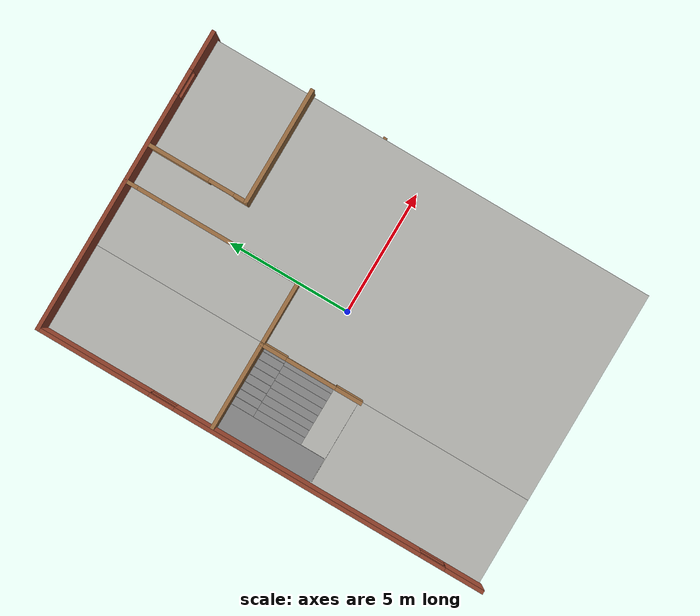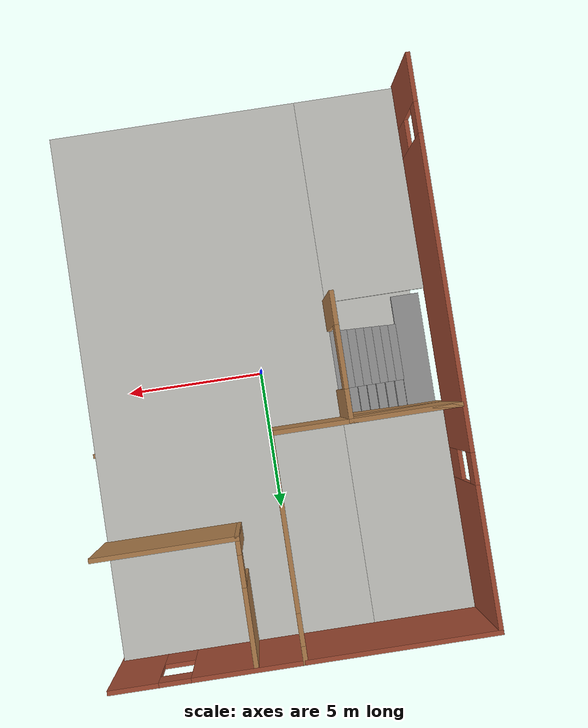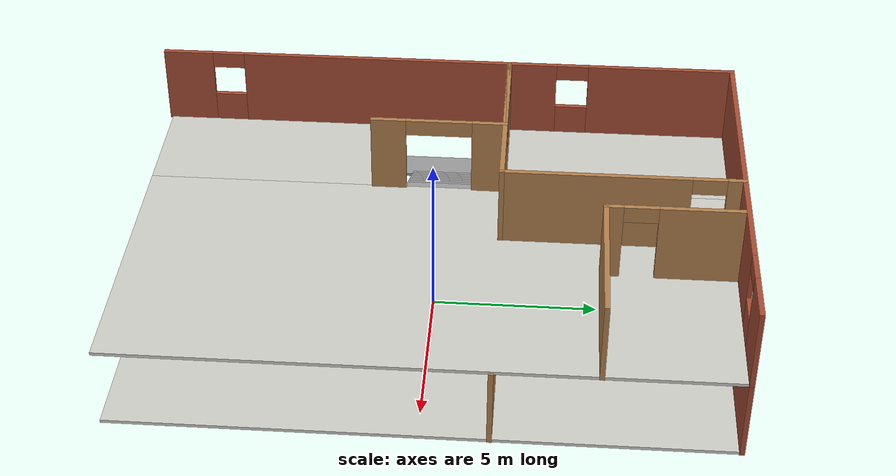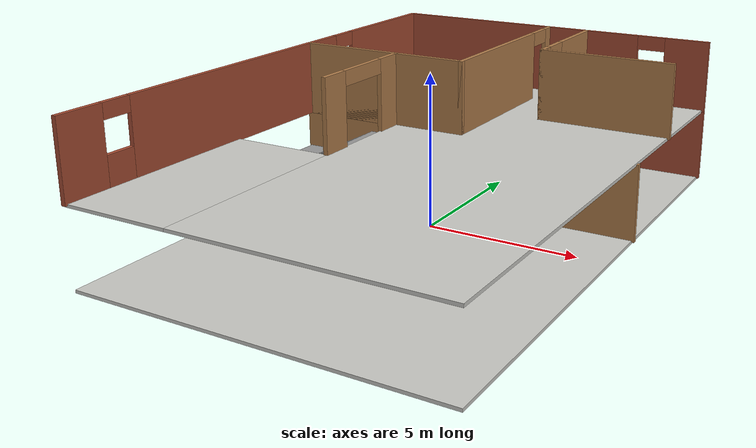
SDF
<sdf version="1.6">
 <model name="demo_model">
  <static>1</static>
  <link name="demo_wall_1_3">
   <pose>0 9.0 0         0 0 0</pose>
   <visual name="demo_wall_1_3_0_left_visual">
    <pose>-5.2875 0 1.25 -0 0 0</pose>
    <geometry><box><size>1.575 0.15 2.5</size></box></geometry>
    <material>
     <script><uri>file://media/materials/scripts/gazebo.material</uri><name>Gazebo/Bricks</name></script>
    </material>
    <meta><layer>0</layer></meta>
   </visual>
   <collision name="demo_wall_1_3_0_left_collision">
    <pose>-5.2875 0 1.25 -0 0 0</pose>
    <geometry><box><size>1.575 0.15 2.5</size></box></geometry>
    <surface>
     <bounce><threshold>1e+06</threshold></bounce>
     <contact><ode><kp>1e+13</kp></ode><bullet><kp>1e+13</kp></bullet></contact>
    </surface>
   </collision>
   <visual name="demo_wall_1_3_0_up_visual">
    <pose>-4.0 0 2.25 -0 0 0</pose>
    <geometry><box><size>1.0 0.15 0.5</size></box></geometry>
    <material>
     <script><uri>file://media/materials/scripts/gazebo.material</uri><name>Gazebo/Bricks</name></script>
    </material>
    <meta><layer>0</layer></meta>
   </visual>
   <collision name="demo_wall_1_3_0_up_collision">
    <pose>-4.0 0 2.25 -0 0 0</pose>
    <geometry><box><size>1.0 0.15 0.5</size></box></geometry>
    <surface>
     <bounce><threshold>1e+06</threshold></bounce>
     <contact><ode><kp>1e+13</kp></ode><bullet><kp>1e+13</kp></bullet></contact>
    </surface>
   </collision>
   <visual name="demo_wall_1_3_0_down_visual">
    <pose>-4.0 0 0.5 -0 0 0</pose>
    <geometry><box><size>1.0 0.15 1</size></box></geometry>
    <material>
     <script><uri>file://media/materials/scripts/gazebo.material</uri><name>Gazebo/Bricks</name></script>
    </material>
    <meta><layer>0</layer></meta>
   </visual>
   <collision name="demo_wall_1_3_0_down_collision">
    <pose>-4.0 0 0.5 -0 0 0</pose>
    <geometry><box><size>1.0 0.15 1</size></box></geometry>
    <surface>
     <bounce><threshold>1e+06</threshold></bounce>
     <contact><ode><kp>1e+13</kp></ode><bullet><kp>1e+13</kp></bullet></contact>
    </surface>
   </collision>
   <visual name="demo_wall_1_3_0_right_visual">
    <pose>1.2874999999999996 0 1.25 -0 0 0</pose>
    <geometry><box><size>9.575 0.15 2.5</size></box></geometry>
    <material>
     <script><uri>file://media/materials/scripts/gazebo.material</uri><name>Gazebo/Bricks</name></script>
    </material>
    <meta><layer>0</layer></meta>
   </visual>
   <collision name="demo_wall_1_3_0_right_collision">
    <pose>1.2874999999999996 0 1.25 -0 0 0</pose>
    <geometry><box><size>9.575 0.15 2.5</size></box></geometry>
    <surface>
     <bounce><threshold>1e+06</threshold></bounce>
     <contact><ode><kp>1e+13</kp></ode><bullet><kp>1e+13</kp></bullet></contact>
    </surface>
   </collision>
  </link>
  <link name="demo_wall_2_3">
   <pose>0 9.0 2.5         0 0 0</pose>
   <visual name="demo_wall_2_3_0_left_visual">
    <pose>-1.2874999999999996 0 1.25 -0 0 0</pose>
    <geometry><box><size>9.575 0.15 2.5</size></box></geometry>
    <material>
     <script><uri>file://media/materials/scripts/gazebo.material</uri><name>Gazebo/Bricks</name></script>
    </material>
    <meta><layer>1</layer></meta>
   </visual>
   <collision name="demo_wall_2_3_0_left_collision">
    <pose>-1.2874999999999996 0 1.25 -0 0 0</pose>
    <geometry><box><size>9.575 0.15 2.5</size></box></geometry>
    <surface>
     <bounce><threshold>1e+06</threshold></bounce>
     <contact><ode><kp>1e+13</kp></ode><bullet><kp>1e+13</kp></bullet></contact>
    </surface>
   </collision>
   <visual name="demo_wall_2_3_0_up_visual">
    <pose>4.0 0 2.25 -0 0 0</pose>
    <geometry><box><size>1.0 0.15 0.5</size></box></geometry>
    <material>
     <script><uri>file://media/materials/scripts/gazebo.material</uri><name>Gazebo/Bricks</name></script>
    </material>
    <meta><layer>1</layer></meta>
   </visual>
   <collision name="demo_wall_2_3_0_up_collision">
    <pose>4.0 0 2.25 -0 0 0</pose>
    <geometry><box><size>1.0 0.15 0.5</size></box></geometry>
    <surface>
     <bounce><threshold>1e+06</threshold></bounce>
     <contact><ode><kp>1e+13</kp></ode><bullet><kp>1e+13</kp></bullet></contact>
    </surface>
   </collision>
   <visual name="demo_wall_2_3_0_down_visual">
    <pose>4.0 0 0.5 -0 0 0</pose>
    <geometry><box><size>1.0 0.15 1</size></box></geometry>
    <material>
     <script><uri>file://media/materials/scripts/gazebo.material</uri><name>Gazebo/Bricks</name></script>
    </material>
    <meta><layer>1</layer></meta>
   </visual>
   <collision name="demo_wall_2_3_0_down_collision">
    <pose>4.0 0 0.5 -0 0 0</pose>
    <geometry><box><size>1.0 0.15 1</size></box></geometry>
    <surface>
     <bounce><threshold>1e+06</threshold></bounce>
     <contact><ode><kp>1e+13</kp></ode><bullet><kp>1e+13</kp></bullet></contact>
    </surface>
   </collision>
   <visual name="demo_wall_2_3_0_right_visual">
    <pose>5.2875 0 1.25 -0 0 0</pose>
    <geometry><box><size>1.575 0.15 2.5</size></box></geometry>
    <material>
     <script><uri>file://media/materials/scripts/gazebo.material</uri><name>Gazebo/Bricks</name></script>
    </material>
    <meta><layer>1</layer></meta>
   </visual>
   <collision name="demo_wall_2_3_0_right_collision">
    <pose>5.2875 0 1.25 -0 0 0</pose>
    <geometry><box><size>1.575 0.15 2.5</size></box></geometry>
    <surface>
     <bounce><threshold>1e+06</threshold></bounce>
     <contact><ode><kp>1e+13</kp></ode><bullet><kp>1e+13</kp></bullet></contact>
    </surface>
   </collision>
  </link>
  <link name="demo_wall_2_4">
   <pose>-6.0 0 2.5         0 0 -1.5707963267948966</pose>
   <visual name="demo_wall_2_4_0_left_visual">
    <pose>-6.7875 0 1.25 -0 0 0</pose>
    <geometry><box><size>4.575 0.15 2.5</size></box></geometry>
    <material>
     <script><uri>file://media/materials/scripts/gazebo.material</uri><name>Gazebo/Bricks</name></script>
    </material>
    <meta><layer>1</layer></meta>
   </visual>
   <collision name="demo_wall_2_4_0_left_collision">
    <pose>-6.7875 0 1.25 -0 0 0</pose>
    <geometry><box><size>4.575 0.15 2.5</size></box></geometry>
    <surface>
     <bounce><threshold>1e+06</threshold></bounce>
     <contact><ode><kp>1e+13</kp></ode><bullet><kp>1e+13</kp></bullet></contact>
    </surface>
   </collision>
   <visual name="demo_wall_2_4_0_up_visual">
    <pose>-4.0 0 2.25 -0 0 0</pose>
    <geometry><box><size>1.0 0.15 0.5</size></box></geometry>
    <material>
     <script><uri>file://media/materials/scripts/gazebo.material</uri><name>Gazebo/Bricks</name></script>
    </material>
    <meta><layer>1</layer></meta>
   </visual>
   <collision name="demo_wall_2_4_0_up_collision">
    <pose>-4.0 0 2.25 -0 0 0</pose>
    <geometry><box><size>1.0 0.15 0.5</size></box></geometry>
    <surface>
     <bounce><threshold>1e+06</threshold></bounce>
     <contact><ode><kp>1e+13</kp></ode><bullet><kp>1e+13</kp></bullet></contact>
    </surface>
   </collision>
   <visual name="demo_wall_2_4_0_down_visual">
    <pose>-4.0 0 0.5 -0 0 0</pose>
    <geometry><box><size>1.0 0.15 1</size></box></geometry>
    <material>
     <script><uri>file://media/materials/scripts/gazebo.material</uri><name>Gazebo/Bricks</name></script>
    </material>
    <meta><layer>1</layer></meta>
   </visual>
   <collision name="demo_wall_2_4_0_down_collision">
    <pose>-4.0 0 0.5 -0 0 0</pose>
    <geometry><box><size>1.0 0.15 1</size></box></geometry>
    <surface>
     <bounce><threshold>1e+06</threshold></bounce>
     <contact><ode><kp>1e+13</kp></ode><bullet><kp>1e+13</kp></bullet></contact>
    </surface>
   </collision>
   <visual name="demo_wall_2_4_1_left_visual">
    <pose>1.5 0 1.25 -0 0 0</pose>
    <geometry><box><size>10.0 0.15 2.5</size></box></geometry>
    <material>
     <script><uri>file://media/materials/scripts/gazebo.material</uri><name>Gazebo/Bricks</name></script>
    </material>
    <meta><layer>1</layer></meta>
   </visual>
   <collision name="demo_wall_2_4_1_left_collision">
    <pose>1.5 0 1.25 -0 0 0</pose>
    <geometry><box><size>10.0 0.15 2.5</size></box></geometry>
    <surface>
     <bounce><threshold>1e+06</threshold></bounce>
     <contact><ode><kp>1e+13</kp></ode><bullet><kp>1e+13</kp></bullet></contact>
    </surface>
   </collision>
   <visual name="demo_wall_2_4_1_up_visual">
    <pose>7.0 0 2.25 -0 0 0</pose>
    <geometry><box><size>1.0 0.15 0.5</size></box></geometry>
    <material>
     <script><uri>file://media/materials/scripts/gazebo.material</uri><name>Gazebo/Bricks</name></script>
    </material>
    <meta><layer>1</layer></meta>
   </visual>
   <collision name="demo_wall_2_4_1_up_collision">
    <pose>7.0 0 2.25 -0 0 0</pose>
    <geometry><box><size>1.0 0.15 0.5</size></box></geometry>
    <surface>
     <bounce><threshold>1e+06</threshold></bounce>
     <contact><ode><kp>1e+13</kp></ode><bullet><kp>1e+13</kp></bullet></contact>
    </surface>
   </collision>
   <visual name="demo_wall_2_4_1_down_visual">
    <pose>7.0 0 0.5 -0 0 0</pose>
    <geometry><box><size>1.0 0.15 1</size></box></geometry>
    <material>
     <script><uri>file://media/materials/scripts/gazebo.material</uri><name>Gazebo/Bricks</name></script>
    </material>
    <meta><layer>1</layer></meta>
   </visual>
   <collision name="demo_wall_2_4_1_down_collision">
    <pose>7.0 0 0.5 -0 0 0</pose>
    <geometry><box><size>1.0 0.15 1</size></box></geometry>
    <surface>
     <bounce><threshold>1e+06</threshold></bounce>
     <contact><ode><kp>1e+13</kp></ode><bullet><kp>1e+13</kp></bullet></contact>
    </surface>
   </collision>
   <visual name="demo_wall_2_4_1_right_visual">
    <pose>8.287500000000001 0 1.25 -0 0 0</pose>
    <geometry><box><size>1.575 0.15 2.5</size></box></geometry>
    <material>
     <script><uri>file://media/materials/scripts/gazebo.material</uri><name>Gazebo/Bricks</name></script>
    </material>
    <meta><layer>1</layer></meta>
   </visual>
   <collision name="demo_wall_2_4_1_right_collision">
    <pose>8.287500000000001 0 1.25 -0 0 0</pose>
    <geometry><box><size>1.575 0.15 2.5</size></box></geometry>
    <surface>
     <bounce><threshold>1e+06</threshold></bounce>
     <contact><ode><kp>1e+13</kp></ode><bullet><kp>1e+13</kp></bullet></contact>
    </surface>
   </collision>
  </link>
  <link name="demo_wall_1_5">
   <pose>-4.25 2 0         0 0 0</pose>
   <visual name="demo_wall_1_5_visual">
    <pose>0 0 1.25 -0 0 0</pose>
    <geometry><box><size>3.65 0.15 2.5</size></box></geometry>
    <material>
     <script><uri>file://media/materials/scripts/gazebo.material</uri><name>Gazebo/Wood</name></script>
    </material>
    <meta><layer>0</layer></meta>
   </visual>
   <collision name="demo_wall_1_5_collision">
    <pose>0 0 1.25 -0 0 0</pose>
    <geometry><box><size>3.65 0.15 2.5</size></box></geometry>
    <surface>
     <bounce><threshold>1e+06</threshold></bounce>
     <contact><ode><kp>1e+13</kp></ode><bullet><kp>1e+13</kp></bullet></contact>
    </surface>
   </collision>
  </link>
  <link name="demo_wall_1_11">
   <pose>3 2 0         0 0 0</pose>
   <visual name="demo_wall_1_11_visual">
    <pose>0 0 1.25 -0 0 0</pose>
    <geometry><box><size>6.15 0.15 2.5</size></box></geometry>
    <material>
     <script><uri>file://media/materials/scripts/gazebo.material</uri><name>Gazebo/Wood</name></script>
    </material>
    <meta><layer>0</layer></meta>
   </visual>
   <collision name="demo_wall_1_11_collision">
    <pose>0 0 1.25 -0 0 0</pose>
    <geometry><box><size>6.15 0.15 2.5</size></box></geometry>
    <surface>
     <bounce><threshold>1e+06</threshold></bounce>
     <contact><ode><kp>1e+13</kp></ode><bullet><kp>1e+13</kp></bullet></contact>
    </surface>
   </collision>
  </link>
  <link name="demo_wall_1_12">
   <pose>-3.75 4 0         0 0 0</pose>
   <visual name="demo_wall_1_12_visual">
    <pose>0 0 1.25 -0 0 0</pose>
    <geometry><box><size>4.65 0.15 2.5</size></box></geometry>
    <material>
     <script><uri>file://media/materials/scripts/gazebo.material</uri><name>Gazebo/Wood</name></script>
    </material>
    <meta><layer>0</layer></meta>
   </visual>
   <collision name="demo_wall_1_12_collision">
    <pose>0 0 1.25 -0 0 0</pose>
    <geometry><box><size>4.65 0.15 2.5</size></box></geometry>
    <surface>
     <bounce><threshold>1e+06</threshold></bounce>
     <contact><ode><kp>1e+13</kp></ode><bullet><kp>1e+13</kp></bullet></contact>
    </surface>
   </collision>
  </link>
  <link name="demo_wall_1_13">
   <pose>-1.5 6.5 0         0 0 1.5707963267948966</pose>
   <visual name="demo_wall_1_13_0_left_visual">
    <pose>-1.5375 0 1.25 -0 0 0</pose>
    <geometry><box><size>2.075 0.15 2.5</size></box></geometry>
    <material>
     <script><uri>file://media/materials/scripts/gazebo.material</uri><name>Gazebo/Wood</name></script>
    </material>
    <meta><layer>0</layer></meta>
   </visual>
   <collision name="demo_wall_1_13_0_left_collision">
    <pose>-1.5375 0 1.25 -0 0 0</pose>
    <geometry><box><size>2.075 0.15 2.5</size></box></geometry>
    <surface>
     <bounce><threshold>1e+06</threshold></bounce>
     <contact><ode><kp>1e+13</kp></ode><bullet><kp>1e+13</kp></bullet></contact>
    </surface>
   </collision>
   <visual name="demo_wall_1_13_0_up_visual">
    <pose>0.0 0 2.25 -0 0 0</pose>
    <geometry><box><size>1 0.15 0.5</size></box></geometry>
    <material>
     <script><uri>file://media/materials/scripts/gazebo.material</uri><name>Gazebo/Wood</name></script>
    </material>
    <meta><layer>0</layer></meta>
   </visual>
   <collision name="demo_wall_1_13_0_up_collision">
    <pose>0.0 0 2.25 -0 0 0</pose>
    <geometry><box><size>1 0.15 0.5</size></box></geometry>
    <surface>
     <bounce><threshold>1e+06</threshold></bounce>
     <contact><ode><kp>1e+13</kp></ode><bullet><kp>1e+13</kp></bullet></contact>
    </surface>
   </collision>
   <visual name="demo_wall_1_13_0_right_visual">
    <pose>1.5374999999999996 0 1.25 -0 0 0</pose>
    <geometry><box><size>2.075 0.15 2.5</size></box></geometry>
    <material>
     <script><uri>file://media/materials/scripts/gazebo.material</uri><name>Gazebo/Wood</name></script>
    </material>
    <meta><layer>0</layer></meta>
   </visual>
   <collision name="demo_wall_1_13_0_right_collision">
    <pose>1.5374999999999996 0 1.25 -0 0 0</pose>
    <geometry><box><size>2.075 0.15 2.5</size></box></geometry>
    <surface>
     <bounce><threshold>1e+06</threshold></bounce>
     <contact><ode><kp>1e+13</kp></ode><bullet><kp>1e+13</kp></bullet></contact>
    </surface>
   </collision>
  </link>
  <link name="demo_wall_2_5">
   <pose>-4.25 2 2.5         0 0 0</pose>
   <visual name="demo_wall_2_5_visual">
    <pose>0 0 1.25 -0 0 0</pose>
    <geometry><box><size>3.65 0.15 2.5</size></box></geometry>
    <material>
     <script><uri>file://media/materials/scripts/gazebo.material</uri><name>Gazebo/Wood</name></script>
    </material>
    <meta><layer>1</layer></meta>
   </visual>
   <collision name="demo_wall_2_5_collision">
    <pose>0 0 1.25 -0 0 0</pose>
    <geometry><box><size>3.65 0.15 2.5</size></box></geometry>
    <surface>
     <bounce><threshold>1e+06</threshold></bounce>
     <contact><ode><kp>1e+13</kp></ode><bullet><kp>1e+13</kp></bullet></contact>
    </surface>
   </collision>
  </link>
  <link name="demo_wall_2_7">
   <pose>-2.5 0 2.5         0 0 1.5707963267948966</pose>
   <visual name="demo_wall_2_7_0_left_visual">
    <pose>-1.5375 0 1.25 -0 0 0</pose>
    <geometry><box><size>1.075 0.15 2.5</size></box></geometry>
    <material>
     <script><uri>file://media/materials/scripts/gazebo.material</uri><name>Gazebo/Wood</name></script>
    </material>
    <meta><layer>1</layer></meta>
   </visual>
   <collision name="demo_wall_2_7_0_left_collision">
    <pose>-1.5375 0 1.25 -0 0 0</pose>
    <geometry><box><size>1.075 0.15 2.5</size></box></geometry>
    <surface>
     <bounce><threshold>1e+06</threshold></bounce>
     <contact><ode><kp>1e+13</kp></ode><bullet><kp>1e+13</kp></bullet></contact>
    </surface>
   </collision>
   <visual name="demo_wall_2_7_0_up_visual">
    <pose>0.0 0 2.25 -0 0 0</pose>
    <geometry><box><size>2 0.15 0.5</size></box></geometry>
    <material>
     <script><uri>file://media/materials/scripts/gazebo.material</uri><name>Gazebo/Wood</name></script>
    </material>
    <meta><layer>1</layer></meta>
   </visual>
   <collision name="demo_wall_2_7_0_up_collision">
    <pose>0.0 0 2.25 -0 0 0</pose>
    <geometry><box><size>2 0.15 0.5</size></box></geometry>
    <surface>
     <bounce><threshold>1e+06</threshold></bounce>
     <contact><ode><kp>1e+13</kp></ode><bullet><kp>1e+13</kp></bullet></contact>
    </surface>
   </collision>
   <visual name="demo_wall_2_7_0_right_visual">
    <pose>1.5375 0 1.25 -0 0 0</pose>
    <geometry><box><size>1.075 0.15 2.5</size></box></geometry>
    <material>
     <script><uri>file://media/materials/scripts/gazebo.material</uri><name>Gazebo/Wood</name></script>
    </material>
    <meta><layer>1</layer></meta>
   </visual>
   <collision name="demo_wall_2_7_0_right_collision">
    <pose>1.5375 0 1.25 -0 0 0</pose>
    <geometry><box><size>1.075 0.15 2.5</size></box></geometry>
    <surface>
     <bounce><threshold>1e+06</threshold></bounce>
     <contact><ode><kp>1e+13</kp></ode><bullet><kp>1e+13</kp></bullet></contact>
    </surface>
   </collision>
  </link>
  <link name="demo_wall_2_13">
   <pose>-3 2 2.5         0 0 0</pose>
   <visual name="demo_wall_2_13_visual">
    <pose>0 0 1.25 -0 0 0</pose>
    <geometry><box><size>6.15 0.15 2.5</size></box></geometry>
    <material>
     <script><uri>file://media/materials/scripts/gazebo.material</uri><name>Gazebo/Wood</name></script>
    </material>
    <meta><layer>1</layer></meta>
   </visual>
   <collision name="demo_wall_2_13_collision">
    <pose>0 0 1.25 -0 0 0</pose>
    <geometry><box><size>6.15 0.15 2.5</size></box></geometry>
    <surface>
     <bounce><threshold>1e+06</threshold></bounce>
     <contact><ode><kp>1e+13</kp></ode><bullet><kp>1e+13</kp></bullet></contact>
    </surface>
   </collision>
  </link>
  <link name="demo_wall_2_14">
   <pose>0 5.5 2.5         0 0 1.5707963267948966</pose>
   <visual name="demo_wall_2_14_0_left_visual">
    <pose>-0.7875000000000001 0 1.25 -0 0 0</pose>
    <geometry><box><size>5.575 0.15 2.5</size></box></geometry>
    <material>
     <script><uri>file://media/materials/scripts/gazebo.material</uri><name>Gazebo/Wood</name></script>
    </material>
    <meta><layer>1</layer></meta>
   </visual>
   <collision name="demo_wall_2_14_0_left_collision">
    <pose>-0.7875000000000001 0 1.25 -0 0 0</pose>
    <geometry><box><size>5.575 0.15 2.5</size></box></geometry>
    <surface>
     <bounce><threshold>1e+06</threshold></bounce>
     <contact><ode><kp>1e+13</kp></ode><bullet><kp>1e+13</kp></bullet></contact>
    </surface>
   </collision>
   <visual name="demo_wall_2_14_0_up_visual">
    <pose>2.5 0 2.25 -0 0 0</pose>
    <geometry><box><size>1.0 0.15 0.5</size></box></geometry>
    <material>
     <script><uri>file://media/materials/scripts/gazebo.material</uri><name>Gazebo/Wood</name></script>
    </material>
    <meta><layer>1</layer></meta>
   </visual>
   <collision name="demo_wall_2_14_0_up_collision">
    <pose>2.5 0 2.25 -0 0 0</pose>
    <geometry><box><size>1.0 0.15 0.5</size></box></geometry>
    <surface>
     <bounce><threshold>1e+06</threshold></bounce>
     <contact><ode><kp>1e+13</kp></ode><bullet><kp>1e+13</kp></bullet></contact>
    </surface>
   </collision>
   <visual name="demo_wall_2_14_0_right_visual">
    <pose>3.2874999999999996 0 1.25 -0 0 0</pose>
    <geometry><box><size>0.575 0.15 2.5</size></box></geometry>
    <material>
     <script><uri>file://media/materials/scripts/gazebo.material</uri><name>Gazebo/Wood</name></script>
    </material>
    <meta><layer>1</layer></meta>
   </visual>
   <collision name="demo_wall_2_14_0_right_collision">
    <pose>3.2874999999999996 0 1.25 -0 0 0</pose>
    <geometry><box><size>0.575 0.15 2.5</size></box></geometry>
    <surface>
     <bounce><threshold>1e+06</threshold></bounce>
     <contact><ode><kp>1e+13</kp></ode><bullet><kp>1e+13</kp></bullet></contact>
    </surface>
   </collision>
  </link>
  <link name="demo_wall_2_15">
   <pose>3.75 5 2.5         0 0 0</pose>
   <visual name="demo_wall_2_15_visual">
    <pose>0 0 1.25 -0 0 0</pose>
    <geometry><box><size>4.65 0.15 2.5</size></box></geometry>
    <material>
     <script><uri>file://media/materials/scripts/gazebo.material</uri><name>Gazebo/Wood</name></script>
    </material>
    <meta><layer>1</layer></meta>
   </visual>
   <collision name="demo_wall_2_15_collision">
    <pose>0 0 1.25 -0 0 0</pose>
    <geometry><box><size>4.65 0.15 2.5</size></box></geometry>
    <surface>
     <bounce><threshold>1e+06</threshold></bounce>
     <contact><ode><kp>1e+13</kp></ode><bullet><kp>1e+13</kp></bullet></contact>
    </surface>
   </collision>
  </link>
  <link name="demo_wall_2_16">
   <pose>1.5 7 2.5         0 0 1.5707963267948966</pose>
   <visual name="demo_wall_2_16_0_left_visual">
    <pose>-1.7875 0 1.25 -0 0 0</pose>
    <geometry><box><size>0.575 0.15 2.5</size></box></geometry>
    <material>
     <script><uri>file://media/materials/scripts/gazebo.material</uri><name>Gazebo/Wood</name></script>
    </material>
    <meta><layer>1</layer></meta>
   </visual>
   <collision name="demo_wall_2_16_0_left_collision">
    <pose>-1.7875 0 1.25 -0 0 0</pose>
    <geometry><box><size>0.575 0.15 2.5</size></box></geometry>
    <surface>
     <bounce><threshold>1e+06</threshold></bounce>
     <contact><ode><kp>1e+13</kp></ode><bullet><kp>1e+13</kp></bullet></contact>
    </surface>
   </collision>
   <visual name="demo_wall_2_16_0_up_visual">
    <pose>-1.0 0 2.25 -0 0 0</pose>
    <geometry><box><size>1.0 0.15 0.5</size></box></geometry>
    <material>
     <script><uri>file://media/materials/scripts/gazebo.material</uri><name>Gazebo/Wood</name></script>
    </material>
    <meta><layer>1</layer></meta>
   </visual>
   <collision name="demo_wall_2_16_0_up_collision">
    <pose>-1.0 0 2.25 -0 0 0</pose>
    <geometry><box><size>1.0 0.15 0.5</size></box></geometry>
    <surface>
     <bounce><threshold>1e+06</threshold></bounce>
     <contact><ode><kp>1e+13</kp></ode><bullet><kp>1e+13</kp></bullet></contact>
    </surface>
   </collision>
   <visual name="demo_wall_2_16_0_right_visual">
    <pose>0.7875000000000001 0 1.25 -0 0 0</pose>
    <geometry><box><size>2.575 0.15 2.5</size></box></geometry>
    <material>
     <script><uri>file://media/materials/scripts/gazebo.material</uri><name>Gazebo/Wood</name></script>
    </material>
    <meta><layer>1</layer></meta>
   </visual>
   <collision name="demo_wall_2_16_0_right_collision">
    <pose>0.7875000000000001 0 1.25 -0 0 0</pose>
    <geometry><box><size>2.575 0.15 2.5</size></box></geometry>
    <surface>
     <bounce><threshold>1e+06</threshold></bounce>
     <contact><ode><kp>1e+13</kp></ode><bullet><kp>1e+13</kp></bullet></contact>
    </surface>
   </collision>
  </link>
  <link name="demo_stair1">
   <pose>-3.75 1.5 0         0 0 1.5707963267948966</pose>
   <visual name="demo_stair1_0_visual">
    <pose>0 -1.09375 0.078125 -0 0 0</pose>
    <geometry><box><size>1 0.3125 0.15625</size></box></geometry>
    <material>
     <script><uri>file://media/materials/scripts/gazebo.material</uri><name>Gazebo/Grey</name></script>
    </material>
    <meta><layer>0</layer></meta>
   </visual>
   <collision name="demo_stair1_0_collision">
    <pose>0 -1.09375 0.078125 -0 0 0</pose>
    <geometry><box><size>1 0.3125 0.15625</size></box></geometry>
    <surface>
     <bounce><threshold>1e+06</threshold></bounce>
     <contact><ode><kp>1e+13</kp></ode><bullet><kp>1e+13</kp></bullet></contact>
    </surface>
   </collision>
   <visual name="demo_stair1_1_visual">
    <pose>0 -0.78125 0.234375 -0 0 0</pose>
    <geometry><box><size>1 0.3125 0.15625</size></box></geometry>
    <material>
     <script><uri>file://media/materials/scripts/gazebo.material</uri><name>Gazebo/Grey</name></script>
    </material>
    <meta><layer>0</layer></meta>
   </visual>
   <collision name="demo_stair1_1_collision">
    <pose>0 -0.78125 0.234375 -0 0 0</pose>
    <geometry><box><size>1 0.3125 0.15625</size></box></geometry>
    <surface>
     <bounce><threshold>1e+06</threshold></bounce>
     <contact><ode><kp>1e+13</kp></ode><bullet><kp>1e+13</kp></bullet></contact>
    </surface>
   </collision>
   <visual name="demo_stair1_2_visual">
    <pose>0 -0.46875 0.390625 -0 0 0</pose>
    <geometry><box><size>1 0.3125 0.15625</size></box></geometry>
    <material>
     <script><uri>file://media/materials/scripts/gazebo.material</uri><name>Gazebo/Grey</name></script>
    </material>
    <meta><layer>0</layer></meta>
   </visual>
   <collision name="demo_stair1_2_collision">
    <pose>0 -0.46875 0.390625 -0 0 0</pose>
    <geometry><box><size>1 0.3125 0.15625</size></box></geometry>
    <surface>
     <bounce><threshold>1e+06</threshold></bounce>
     <contact><ode><kp>1e+13</kp></ode><bullet><kp>1e+13</kp></bullet></contact>
    </surface>
   </collision>
   <visual name="demo_stair1_3_visual">
    <pose>0 -0.15625 0.546875 -0 0 0</pose>
    <geometry><box><size>1 0.3125 0.15625</size></box></geometry>
    <material>
     <script><uri>file://media/materials/scripts/gazebo.material</uri><name>Gazebo/Grey</name></script>
    </material>
    <meta><layer>0</layer></meta>
   </visual>
   <collision name="demo_stair1_3_collision">
    <pose>0 -0.15625 0.546875 -0 0 0</pose>
    <geometry><box><size>1 0.3125 0.15625</size></box></geometry>
    <surface>
     <bounce><threshold>1e+06</threshold></bounce>
     <contact><ode><kp>1e+13</kp></ode><bullet><kp>1e+13</kp></bullet></contact>
    </surface>
   </collision>
   <visual name="demo_stair1_4_visual">
    <pose>0 0.15625 0.703125 -0 0 0</pose>
    <geometry><box><size>1 0.3125 0.15625</size></box></geometry>
    <material>
     <script><uri>file://media/materials/scripts/gazebo.material</uri><name>Gazebo/Grey</name></script>
    </material>
    <meta><layer>0</layer></meta>
   </visual>
   <collision name="demo_stair1_4_collision">
    <pose>0 0.15625 0.703125 -0 0 0</pose>
    <geometry><box><size>1 0.3125 0.15625</size></box></geometry>
    <surface>
     <bounce><threshold>1e+06</threshold></bounce>
     <contact><ode><kp>1e+13</kp></ode><bullet><kp>1e+13</kp></bullet></contact>
    </surface>
   </collision>
   <visual name="demo_stair1_5_visual">
    <pose>0 0.46875 0.859375 -0 0 0</pose>
    <geometry><box><size>1 0.3125 0.15625</size></box></geometry>
    <material>
     <script><uri>file://media/materials/scripts/gazebo.material</uri><name>Gazebo/Grey</name></script>
    </material>
    <meta><layer>0</layer></meta>
   </visual>
   <collision name="demo_stair1_5_collision">
    <pose>0 0.46875 0.859375 -0 0 0</pose>
    <geometry><box><size>1 0.3125 0.15625</size></box></geometry>
    <surface>
     <bounce><threshold>1e+06</threshold></bounce>
     <contact><ode><kp>1e+13</kp></ode><bullet><kp>1e+13</kp></bullet></contact>
    </surface>
   </collision>
   <visual name="demo_stair1_6_visual">
    <pose>0 0.78125 1.015625 -0 0 0</pose>
    <geometry><box><size>1 0.3125 0.15625</size></box></geometry>
    <material>
     <script><uri>file://media/materials/scripts/gazebo.material</uri><name>Gazebo/Grey</name></script>
    </material>
    <meta><layer>0</layer></meta>
   </visual>
   <collision name="demo_stair1_6_collision">
    <pose>0 0.78125 1.015625 -0 0 0</pose>
    <geometry><box><size>1 0.3125 0.15625</size></box></geometry>
    <surface>
     <bounce><threshold>1e+06</threshold></bounce>
     <contact><ode><kp>1e+13</kp></ode><bullet><kp>1e+13</kp></bullet></contact>
    </surface>
   </collision>
   <visual name="demo_stair1_7_visual">
    <pose>0 1.09375 1.171875 -0 0 0</pose>
    <geometry><box><size>1 0.3125 0.15625</size></box></geometry>
    <material>
     <script><uri>file://media/materials/scripts/gazebo.material</uri><name>Gazebo/Grey</name></script>
    </material>
    <meta><layer>0</layer></meta>
   </visual>
   <collision name="demo_stair1_7_collision">
    <pose>0 1.09375 1.171875 -0 0 0</pose>
    <geometry><box><size>1 0.3125 0.15625</size></box></geometry>
    <surface>
     <bounce><threshold>1e+06</threshold></bounce>
     <contact><ode><kp>1e+13</kp></ode><bullet><kp>1e+13</kp></bullet></contact>
    </surface>
   </collision>
  </link>
  <link name="demo_stair3">
   <pose>-5.5 0 1.2         0 0 -1.5707963267948966</pose>
   <visual name="demo_stair3_0_visual">
    <pose>0 0.0 0.05 -0 0 0</pose>
    <geometry><box><size>4 1.0 0.1</size></box></geometry>
    <material>
     <script><uri>file://media/materials/scripts/gazebo.material</uri><name>Gazebo/Grey</name></script>
    </material>
    <meta><layer>0</layer></meta>
   </visual>
   <collision name="demo_stair3_0_collision">
    <pose>0 0.0 0.05 -0 0 0</pose>
    <geometry><box><size>4 1.0 0.1</size></box></geometry>
    <surface>
     <bounce><threshold>1e+06</threshold></bounce>
     <contact><ode><kp>1e+13</kp></ode><bullet><kp>1e+13</kp></bullet></contact>
    </surface>
   </collision>
  </link>
  <link name="demo_stair4">
   <pose>-3.75 0 1.25         0 0 -1.5707963267948966</pose>
   <visual name="demo_stair4_0_visual">
    <pose>0 -1.09375 0.078125 -0 0 0</pose>
    <geometry><box><size>2 0.3125 0.15625</size></box></geometry>
    <material>
     <script><uri>file://media/materials/scripts/gazebo.material</uri><name>Gazebo/Grey</name></script>
    </material>
    <meta><layer>0</layer></meta>
   </visual>
   <collision name="demo_stair4_0_collision">
    <pose>0 -1.09375 0.078125 -0 0 0</pose>
    <geometry><box><size>2 0.3125 0.15625</size></box></geometry>
    <surface>
     <bounce><threshold>1e+06</threshold></bounce>
     <contact><ode><kp>1e+13</kp></ode><bullet><kp>1e+13</kp></bullet></contact>
    </surface>
   </collision>
   <visual name="demo_stair4_1_visual">
    <pose>0 -0.78125 0.234375 -0 0 0</pose>
    <geometry><box><size>2 0.3125 0.15625</size></box></geometry>
    <material>
     <script><uri>file://media/materials/scripts/gazebo.material</uri><name>Gazebo/Grey</name></script>
    </material>
    <meta><layer>0</layer></meta>
   </visual>
   <collision name="demo_stair4_1_collision">
    <pose>0 -0.78125 0.234375 -0 0 0</pose>
    <geometry><box><size>2 0.3125 0.15625</size></box></geometry>
    <surface>
     <bounce><threshold>1e+06</threshold></bounce>
     <contact><ode><kp>1e+13</kp></ode><bullet><kp>1e+13</kp></bullet></contact>
    </surface>
   </collision>
   <visual name="demo_stair4_2_visual">
    <pose>0 -0.46875 0.390625 -0 0 0</pose>
    <geometry><box><size>2 0.3125 0.15625</size></box></geometry>
    <material>
     <script><uri>file://media/materials/scripts/gazebo.material</uri><name>Gazebo/Grey</name></script>
    </material>
    <meta><layer>0</layer></meta>
   </visual>
   <collision name="demo_stair4_2_collision">
    <pose>0 -0.46875 0.390625 -0 0 0</pose>
    <geometry><box><size>2 0.3125 0.15625</size></box></geometry>
    <surface>
     <bounce><threshold>1e+06</threshold></bounce>
     <contact><ode><kp>1e+13</kp></ode><bullet><kp>1e+13</kp></bullet></contact>
    </surface>
   </collision>
   <visual name="demo_stair4_3_visual">
    <pose>0 -0.15625 0.546875 -0 0 0</pose>
    <geometry><box><size>2 0.3125 0.15625</size></box></geometry>
    <material>
     <script><uri>file://media/materials/scripts/gazebo.material</uri><name>Gazebo/Grey</name></script>
    </material>
    <meta><layer>0</layer></meta>
   </visual>
   <collision name="demo_stair4_3_collision">
    <pose>0 -0.15625 0.546875 -0 0 0</pose>
    <geometry><box><size>2 0.3125 0.15625</size></box></geometry>
    <surface>
     <bounce><threshold>1e+06</threshold></bounce>
     <contact><ode><kp>1e+13</kp></ode><bullet><kp>1e+13</kp></bullet></contact>
    </surface>
   </collision>
   <visual name="demo_stair4_4_visual">
    <pose>0 0.15625 0.703125 -0 0 0</pose>
    <geometry><box><size>2 0.3125 0.15625</size></box></geometry>
    <material>
     <script><uri>file://media/materials/scripts/gazebo.material</uri><name>Gazebo/Grey</name></script>
    </material>
    <meta><layer>0</layer></meta>
   </visual>
   <collision name="demo_stair4_4_collision">
    <pose>0 0.15625 0.703125 -0 0 0</pose>
    <geometry><box><size>2 0.3125 0.15625</size></box></geometry>
    <surface>
     <bounce><threshold>1e+06</threshold></bounce>
     <contact><ode><kp>1e+13</kp></ode><bullet><kp>1e+13</kp></bullet></contact>
    </surface>
   </collision>
   <visual name="demo_stair4_5_visual">
    <pose>0 0.46875 0.859375 -0 0 0</pose>
    <geometry><box><size>2 0.3125 0.15625</size></box></geometry>
    <material>
     <script><uri>file://media/materials/scripts/gazebo.material</uri><name>Gazebo/Grey</name></script>
    </material>
    <meta><layer>0</layer></meta>
   </visual>
   <collision name="demo_stair4_5_collision">
    <pose>0 0.46875 0.859375 -0 0 0</pose>
    <geometry><box><size>2 0.3125 0.15625</size></box></geometry>
    <surface>
     <bounce><threshold>1e+06</threshold></bounce>
     <contact><ode><kp>1e+13</kp></ode><bullet><kp>1e+13</kp></bullet></contact>
    </surface>
   </collision>
   <visual name="demo_stair4_6_visual">
    <pose>0 0.78125 1.015625 -0 0 0</pose>
    <geometry><box><size>2 0.3125 0.15625</size></box></geometry>
    <material>
     <script><uri>file://media/materials/scripts/gazebo.material</uri><name>Gazebo/Grey</name></script>
    </material>
    <meta><layer>0</layer></meta>
   </visual>
   <collision name="demo_stair4_6_collision">
    <pose>0 0.78125 1.015625 -0 0 0</pose>
    <geometry><box><size>2 0.3125 0.15625</size></box></geometry>
    <surface>
     <bounce><threshold>1e+06</threshold></bounce>
     <contact><ode><kp>1e+13</kp></ode><bullet><kp>1e+13</kp></bullet></contact>
    </surface>
   </collision>
   <visual name="demo_stair4_7_visual">
    <pose>0 1.09375 1.171875 -0 0 0</pose>
    <geometry><box><size>2 0.3125 0.15625</size></box></geometry>
    <material>
     <script><uri>file://media/materials/scripts/gazebo.material</uri><name>Gazebo/Grey</name></script>
    </material>
    <meta><layer>0</layer></meta>
   </visual>
   <collision name="demo_stair4_7_collision">
    <pose>0 1.09375 1.171875 -0 0 0</pose>
    <geometry><box><size>2 0.3125 0.15625</size></box></geometry>
    <surface>
     <bounce><threshold>1e+06</threshold></bounce>
     <contact><ode><kp>1e+13</kp></ode><bullet><kp>1e+13</kp></bullet></contact>
    </surface>
   </collision>
  </link>
  <link name="demo_floor1">
   <visual name="demo_floor1_visual">
    <geometry><box><size>12 18 0.1</size></box></geometry>
    <material>
     <script><uri>file://media/materials/scripts/gazebo.material</uri><name>Gazebo/CeilingTiled</name></script>
    </material>
    <meta><layer>0</layer></meta>
   </visual>
   <collision name="demo_floor1_collision">
    <geometry><box><size>12 18 0.1</size></box></geometry>
    <surface>
     <bounce><threshold>1e+06</threshold></bounce>
     <contact><ode><kp>1e+13</kp></ode><bullet><kp>1e+13</kp></bullet></contact>
    </surface>
   </collision>
  </link>
  <link name="demo_floor2">
   <pose>0 0 2.5         0 0 0</pose>
   <visual name="demo_floor2_0_up_visual">
    <pose>-4.25 5.5 0 -0 0 0</pose>
    <geometry><box><size>3.5 7 0.1</size></box></geometry>
    <material>
     <script><uri>file://media/materials/scripts/gazebo.material</uri><name>Gazebo/CeilingTiled</name></script>
    </material>
    <meta><layer>1</layer></meta>
   </visual>
   <collision name="demo_floor2_0_up_collision">
    <pose>-4.25 5.5 0 -0 0 0</pose>
    <geometry><box><size>3.5 7 0.1</size></box></geometry>
    <surface>
     <bounce><threshold>1e+06</threshold></bounce>
     <contact><ode><kp>1e+13</kp></ode><bullet><kp>1e+13</kp></bullet></contact>
    </surface>
   </collision>
   <visual name="demo_floor2_0_down_visual">
    <pose>-4.25 -5.5 0 -0 0 0</pose>
    <geometry><box><size>3.5 7 0.1</size></box></geometry>
    <material>
     <script><uri>file://media/materials/scripts/gazebo.material</uri><name>Gazebo/CeilingTiled</name></script>
    </material>
    <meta><layer>1</layer></meta>
   </visual>
   <collision name="demo_floor2_0_down_collision">
    <pose>-4.25 -5.5 0 -0 0 0</pose>
    <geometry><box><size>3.5 7 0.1</size></box></geometry>
    <surface>
     <bounce><threshold>1e+06</threshold></bounce>
     <contact><ode><kp>1e+13</kp></ode><bullet><kp>1e+13</kp></bullet></contact>
    </surface>
   </collision>
   <visual name="demo_floor2_0_right_visual">
    <pose>1.75 0 0 -0 0 0</pose>
    <geometry><box><size>8.5 18 0.1</size></box></geometry>
    <material>
     <script><uri>file://media/materials/scripts/gazebo.material</uri><name>Gazebo/CeilingTiled</name></script>
    </material>
    <meta><layer>1</layer></meta>
   </visual>
   <collision name="demo_floor2_0_right_collision">
    <pose>1.75 0 0 -0 0 0</pose>
    <geometry><box><size>8.5 18 0.1</size></box></geometry>
    <surface>
     <bounce><threshold>1e+06</threshold></bounce>
     <contact><ode><kp>1e+13</kp></ode><bullet><kp>1e+13</kp></bullet></contact>
    </surface>
   </collision>
  </link>
 </model>
</sdf>
